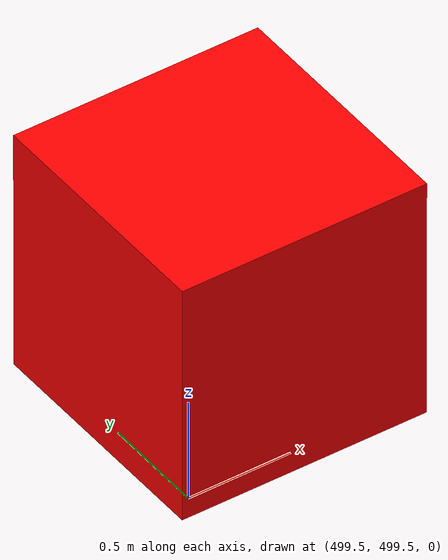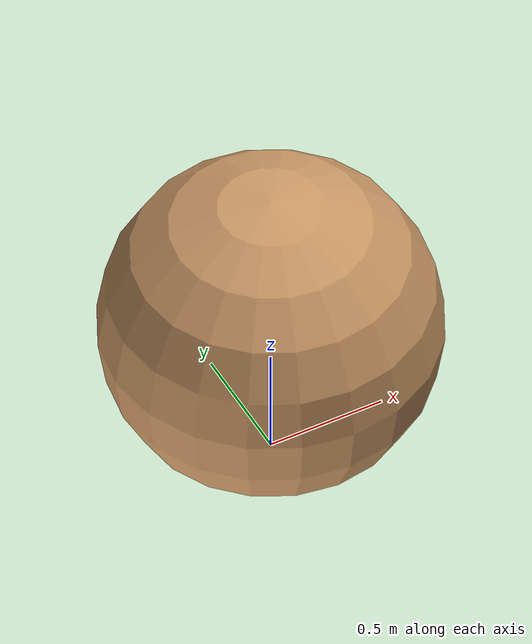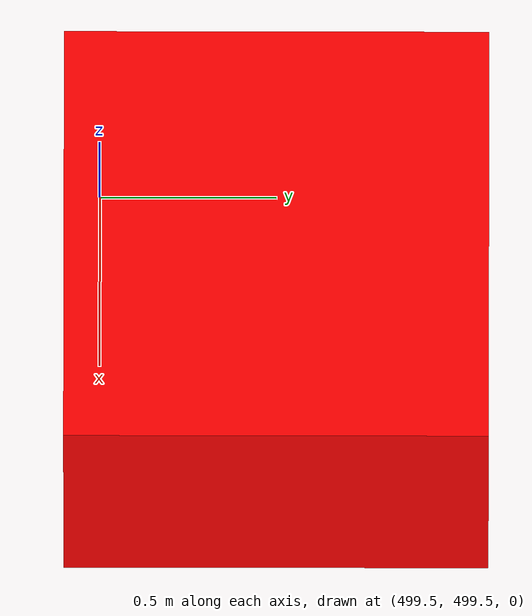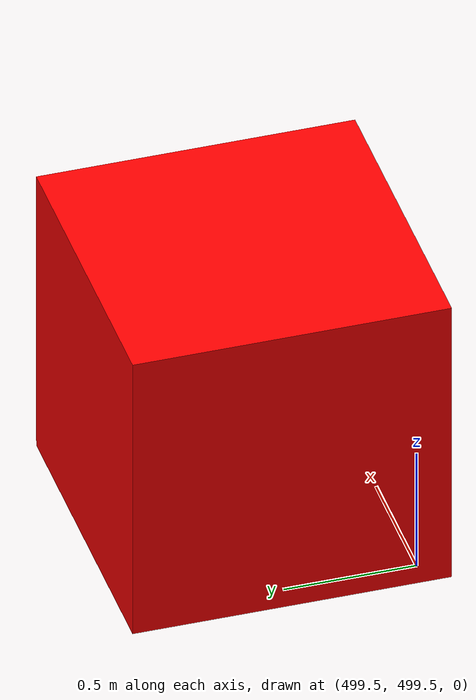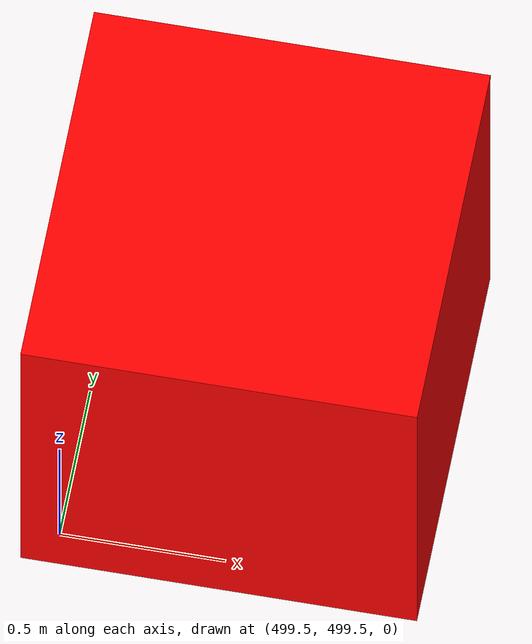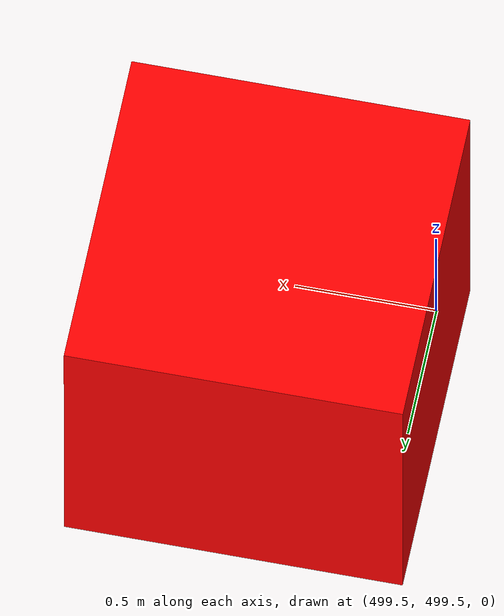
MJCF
<mujoco>
  <compiler inertiafromgeom="true" angle="degree" coordinate="global" />
  <option timestep="0.02" integrator="RK4" />
  <default>
    <joint limited="false" armature="0" damping="0" />
    <geom condim="3" conaffinity="0" margin="0" friction="1 0.5 0.5" rgba="0.8 0.6 0.4 1" density="50" />
  </default>
  <asset>
    <texture type="skybox" builtin="gradient" width="100" height="100" rgb1="1 1 1" rgb2="0 0 0" />
    <texture name="texgeom" type="cube" builtin="flat" mark="cross" width="127" height="1278" rgb1="0.8 0.6 0.4" rgb2="0.8 0.6 0.4" markrgb="1 1 1" random="0.01" />
    <texture name="texplane" type="2d" builtin="checker" rgb1="0 0 0" rgb2="0.8 0.8 0.8" width="100" height="100" />
    <material name='MatPlane' texture="texplane" shininess="1" texrepeat="30 30" specular="1"  reflectance="0.5" />
    <material name='geom' texture="texgeom" texuniform="true" />
  </asset>
  <worldbody>
    <light directional="true" cutoff="100" exponent="1" diffuse="1 1 1" specular=".1 .1 .1" pos="0 0 1.3" dir="-0 0 -1.3" />
    <geom name='floor' material="MatPlane" pos='0 0 0' size='40 40 40' type='plane' conaffinity='1' rgba='0.8 0.9 0.8 1' condim='3' />

    <body name="torso" pos="0 0 0">
      <geom name="pointbody" type="sphere" size="0.7" pos="0 0 0.7"/>
      <joint name='ballx' type='slide' axis='1 0 0' pos='0 0 0' />
      <joint name='bally' type='slide' axis='0 1 0' pos='0 0 0' />
    </body>

    <body name="floor" pos='0 0 0'>
		  <site name="target0" pos="500 500 0.6" size="0.6 0.6 0.6" rgba="1 0 0 1" type="box" ></site>
		</body>

  </worldbody>

  <actuator>
    <!-- Those are just dummy actuators for providing ranges, previously the gear was set to 100 -->
    <motor joint='ballx' ctrlrange="-1 1" ctrllimited="true" gear="100 0 0 0 0 0"/>
    <motor joint='bally' ctrlrange="-1 1" ctrllimited="true" gear="100 0 0 0 0 0"/>
  </actuator>
</mujoco>
